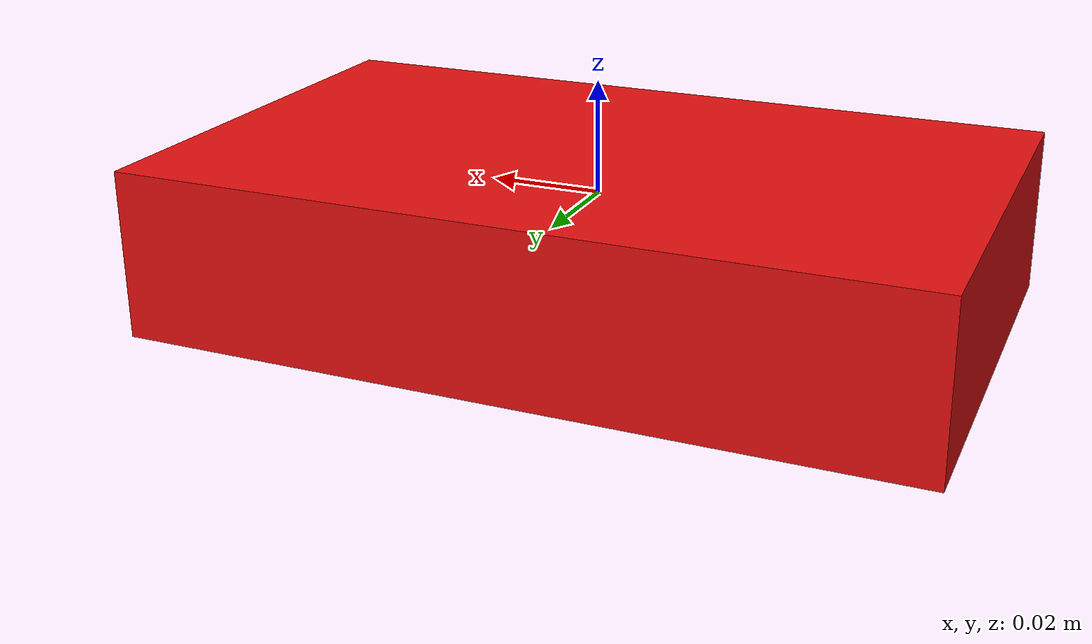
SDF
<?xml version="1.0"?>
<sdf version="1.8">

  <model name="RedCube">
    <static>false</static>

    <link name="RedCube">

      <pose>0 0 0 0 0 0</pose>
      <self_collide>false</self_collide>

      <!-- Kutu: 0.14 (x) x 0.083 (y) x 0.03 (z) m, 0.1 kg.
           I = m/12 * (a^2 + b^2) -->
      <inertial>
        <pose>0 0 -0.0075 0 0 0</pose>
        <mass>0.1</mass>
        <inertia>
          <ixx>0.000064908</ixx>
          <ixy>0.0</ixy>
          <ixz>0.0</ixz>
          <iyy>0.000170833</iyy>
          <iyz>0.0</iyz>
          <izz>0.000220742</izz>
        </inertia>
      </inertial>

      <collision name="RedCube_collision">

        <pose>0 0 -0.0075 0 0 0</pose>

        <geometry>
          <box>
            <size>0.14 0.083 0.03</size>
          </box>
        </geometry>

      </collision>

      <visual name="RedCube_visual">

        <pose>0 0 -0.0075 0 0 0</pose>

        <geometry>
          <box>
            <size>0.14 0.083 0.03</size>
          </box>
        </geometry>

        <!-- DAE'nin RED-material'ı düştüğü için renk burada verilmeli -->
        <material>
          <ambient>0.8 0.05 0.05 1</ambient>
          <diffuse>0.9 0.06 0.06 1</diffuse>
          <specular>0.2 0.05 0.05 1</specular>
        </material>

      </visual>

    </link>

    <!-- ObjectPose plugin (libros2_objectpose_plugin.so) not built in this workspace -->

  </model>
</sdf>
